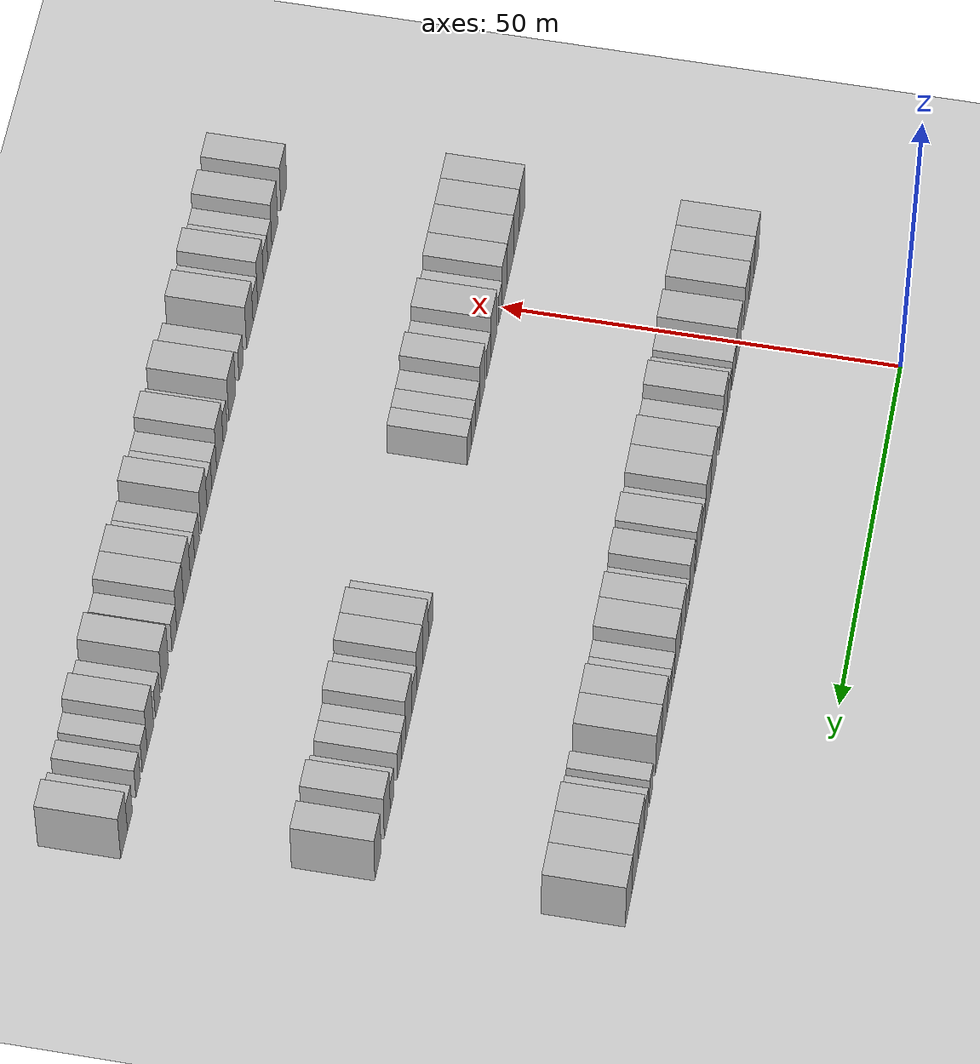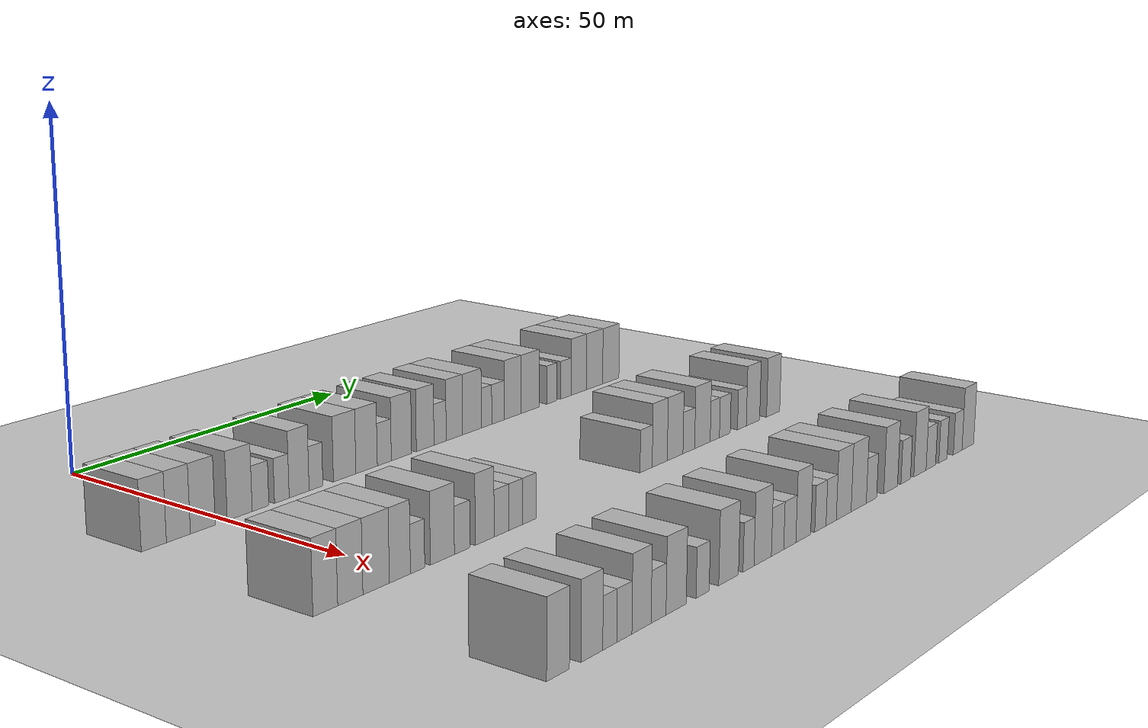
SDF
<sdf version="1.6">
 <world name="default">
  <include><name>ground_plane_1</name><uri>model://HANNAS_ground_plane</uri></include>
  <model name="building_99">
   <static>1</static>
   <pose>25.0000 -11.8800 0 0.000000 0.000000 0.000000</pose>
   <link name="link">
    <pose>0 0 4.50 0 0 0</pose>
    <collision name="collision"><geometry><box><size>10.0000 3.9005 9.0000</size></box></geometry></collision>
    <visual name="visual">
     <cast_shadows>0</cast_shadows>
     <geometry><box><size>10.0000 3.9005 9.0000</size></box></geometry>
     <material>
      <script>
       <uri>model://HANNAS_wall/materials/scripts</uri>
       <uri>model://HANNAS_wall/materials/textures</uri>
       <name>vrc/HANNAS_wall</name>
      </script>
     </material>
    </visual>
   </link>
  </model>
  <model name="building_100">
   <static>1</static>
   <pose>25.0000 -8.0152 0 0.000000 0.000000 0.000000</pose>
   <link name="link">
    <pose>0 0 4.50 0 0 0</pose>
    <collision name="collision"><geometry><box><size>10.0000 3.8291 9.0000</size></box></geometry></collision>
    <visual name="visual">
     <cast_shadows>0</cast_shadows>
     <geometry><box><size>10.0000 3.8291 9.0000</size></box></geometry>
     <material>
      <script>
       <uri>model://HANNAS_wall/materials/scripts</uri>
       <uri>model://HANNAS_wall/materials/textures</uri>
       <name>vrc/HANNAS_wall</name>
      </script>
     </material>
    </visual>
   </link>
  </model>
  <model name="building_101">
   <static>1</static>
   <pose>25.0000 -4.0634 0 0.000000 0.000000 0.000000</pose>
   <link name="link">
    <pose>0 0 4.50 0 0 0</pose>
    <collision name="collision"><geometry><box><size>10.0000 4.0743 9.0000</size></box></geometry></collision>
    <visual name="visual">
     <cast_shadows>0</cast_shadows>
     <geometry><box><size>10.0000 4.0743 9.0000</size></box></geometry>
     <material>
      <script>
       <uri>model://HANNAS_wall/materials/scripts</uri>
       <uri>model://HANNAS_wall/materials/textures</uri>
       <name>vrc/HANNAS_wall</name>
      </script>
     </material>
    </visual>
   </link>
  </model>
  <model name="building_102">
   <static>1</static>
   <pose>25.0000 2.1044 0 0.000000 0.000000 0.000000</pose>
   <link name="link">
    <pose>0 0 4.50 0 0 0</pose>
    <collision name="collision"><geometry><box><size>10.0000 4.2614 9.0000</size></box></geometry></collision>
    <visual name="visual">
     <cast_shadows>0</cast_shadows>
     <geometry><box><size>10.0000 4.2614 9.0000</size></box></geometry>
     <material>
      <script>
       <uri>model://HANNAS_wall/materials/scripts</uri>
       <uri>model://HANNAS_wall/materials/textures</uri>
       <name>vrc/HANNAS_wall</name>
      </script>
     </material>
    </visual>
   </link>
  </model>
  <model name="building_103">
   <static>1</static>
   <pose>25.0000 5.6907 0 0.000000 0.000000 0.000000</pose>
   <link name="link">
    <pose>0 0 3.00 0 0 0</pose>
    <collision name="collision"><geometry><box><size>10.0000 2.9110 6.0000</size></box></geometry></collision>
    <visual name="visual">
     <cast_shadows>0</cast_shadows>
     <geometry><box><size>10.0000 2.9110 6.0000</size></box></geometry>
     <material>
      <script>
       <uri>model://HANNAS_wall/materials/scripts</uri>
       <uri>model://HANNAS_wall/materials/textures</uri>
       <name>vrc/HANNAS_wall</name>
      </script>
     </material>
    </visual>
   </link>
  </model>
  <model name="building_104">
   <static>1</static>
   <pose>25.0000 9.4594 0 0.000000 0.000000 0.000000</pose>
   <link name="link">
    <pose>0 0 3.00 0 0 0</pose>
    <collision name="collision"><geometry><box><size>10.0000 2.6265 6.0000</size></box></geometry></collision>
    <visual name="visual">
     <cast_shadows>0</cast_shadows>
     <geometry><box><size>10.0000 2.6265 6.0000</size></box></geometry>
     <material>
      <script>
       <uri>model://HANNAS_wall/materials/scripts</uri>
       <uri>model://HANNAS_wall/materials/textures</uri>
       <name>vrc/HANNAS_wall</name>
      </script>
     </material>
    </visual>
   </link>
  </model>
  <model name="building_105">
   <static>1</static>
   <pose>25.0000 12.5987 0 0.000000 0.000000 0.000000</pose>
   <link name="link">
    <pose>0 0 4.50 0 0 0</pose>
    <collision name="collision"><geometry><box><size>10.0000 3.6520 9.0000</size></box></geometry></collision>
    <visual name="visual">
     <cast_shadows>0</cast_shadows>
     <geometry><box><size>10.0000 3.6520 9.0000</size></box></geometry>
     <material>
      <script>
       <uri>model://HANNAS_wall/materials/scripts</uri>
       <uri>model://HANNAS_wall/materials/textures</uri>
       <name>vrc/HANNAS_wall</name>
      </script>
     </material>
    </visual>
   </link>
  </model>
  <model name="building_106">
   <static>1</static>
   <pose>25.0000 15.7078 0 0.000000 0.000000 0.000000</pose>
   <link name="link">
    <pose>0 0 3.00 0 0 0</pose>
    <collision name="collision"><geometry><box><size>10.0000 2.5662 6.0000</size></box></geometry></collision>
    <visual name="visual">
     <cast_shadows>0</cast_shadows>
     <geometry><box><size>10.0000 2.5662 6.0000</size></box></geometry>
     <material>
      <script>
       <uri>model://HANNAS_wall/materials/scripts</uri>
       <uri>model://HANNAS_wall/materials/textures</uri>
       <name>vrc/HANNAS_wall</name>
      </script>
     </material>
    </visual>
   </link>
  </model>
  <model name="building_107">
   <static>1</static>
   <pose>25.0000 21.1686 0 0.000000 0.000000 0.000000</pose>
   <link name="link">
    <pose>0 0 4.50 0 0 0</pose>
    <collision name="collision"><geometry><box><size>10.0000 4.3552 9.0000</size></box></geometry></collision>
    <visual name="visual">
     <cast_shadows>0</cast_shadows>
     <geometry><box><size>10.0000 4.3552 9.0000</size></box></geometry>
     <material>
      <script>
       <uri>model://HANNAS_wall/materials/scripts</uri>
       <uri>model://HANNAS_wall/materials/textures</uri>
       <name>vrc/HANNAS_wall</name>
      </script>
     </material>
    </visual>
   </link>
  </model>
  <model name="building_108">
   <static>1</static>
   <pose>25.0000 25.4719 0 0.000000 0.000000 0.000000</pose>
   <link name="link">
    <pose>0 0 4.50 0 0 0</pose>
    <collision name="collision"><geometry><box><size>10.0000 4.2514 9.0000</size></box></geometry></collision>
    <visual name="visual">
     <cast_shadows>0</cast_shadows>
     <geometry><box><size>10.0000 4.2514 9.0000</size></box></geometry>
     <material>
      <script>
       <uri>model://HANNAS_wall/materials/scripts</uri>
       <uri>model://HANNAS_wall/materials/textures</uri>
       <name>vrc/HANNAS_wall</name>
      </script>
     </material>
    </visual>
   </link>
  </model>
  <model name="building_109">
   <static>1</static>
   <pose>25.0000 29.0185 0 0.000000 0.000000 0.000000</pose>
   <link name="link">
    <pose>0 0 3.00 0 0 0</pose>
    <collision name="collision"><geometry><box><size>10.0000 2.8420 6.0000</size></box></geometry></collision>
    <visual name="visual">
     <cast_shadows>0</cast_shadows>
     <geometry><box><size>10.0000 2.8420 6.0000</size></box></geometry>
     <material>
      <script>
       <uri>model://HANNAS_wall/materials/scripts</uri>
       <uri>model://HANNAS_wall/materials/textures</uri>
       <name>vrc/HANNAS_wall</name>
      </script>
     </material>
    </visual>
   </link>
  </model>
  <model name="building_110">
   <static>1</static>
   <pose>25.0000 32.5424 0 0.000000 0.000000 0.000000</pose>
   <link name="link">
    <pose>0 0 4.50 0 0 0</pose>
    <collision name="collision"><geometry><box><size>10.0000 4.2057 9.0000</size></box></geometry></collision>
    <visual name="visual">
     <cast_shadows>0</cast_shadows>
     <geometry><box><size>10.0000 4.2057 9.0000</size></box></geometry>
     <material>
      <script>
       <uri>model://HANNAS_wall/materials/scripts</uri>
       <uri>model://HANNAS_wall/materials/textures</uri>
       <name>vrc/HANNAS_wall</name>
      </script>
     </material>
    </visual>
   </link>
  </model>
  <model name="building_111">
   <static>1</static>
   <pose>25.0000 37.5344 0 0.000000 0.000000 0.000000</pose>
   <link name="link">
    <pose>0 0 4.50 0 0 0</pose>
    <collision name="collision"><geometry><box><size>10.0000 3.7782 9.0000</size></box></geometry></collision>
    <visual name="visual">
     <cast_shadows>0</cast_shadows>
     <geometry><box><size>10.0000 3.7782 9.0000</size></box></geometry>
     <material>
      <script>
       <uri>model://HANNAS_wall/materials/scripts</uri>
       <uri>model://HANNAS_wall/materials/textures</uri>
       <name>vrc/HANNAS_wall</name>
      </script>
     </material>
    </visual>
   </link>
  </model>
  <model name="building_112">
   <static>1</static>
   <pose>25.0000 40.7543 0 0.000000 0.000000 0.000000</pose>
   <link name="link">
    <pose>0 0 3.00 0 0 0</pose>
    <collision name="collision"><geometry><box><size>10.0000 2.6617 6.0000</size></box></geometry></collision>
    <visual name="visual">
     <cast_shadows>0</cast_shadows>
     <geometry><box><size>10.0000 2.6617 6.0000</size></box></geometry>
     <material>
      <script>
       <uri>model://HANNAS_wall/materials/scripts</uri>
       <uri>model://HANNAS_wall/materials/textures</uri>
       <name>vrc/HANNAS_wall</name>
      </script>
     </material>
    </visual>
   </link>
  </model>
  <model name="building_113">
   <static>1</static>
   <pose>25.0000 43.9038 0 0.000000 0.000000 0.000000</pose>
   <link name="link">
    <pose>0 0 4.50 0 0 0</pose>
    <collision name="collision"><geometry><box><size>10.0000 3.6372 9.0000</size></box></geometry></collision>
    <visual name="visual">
     <cast_shadows>0</cast_shadows>
     <geometry><box><size>10.0000 3.6372 9.0000</size></box></geometry>
     <material>
      <script>
       <uri>model://HANNAS_wall/materials/scripts</uri>
       <uri>model://HANNAS_wall/materials/textures</uri>
       <name>vrc/HANNAS_wall</name>
      </script>
     </material>
    </visual>
   </link>
  </model>
  <model name="building_114">
   <static>1</static>
   <pose>25.0000 47.8524 0 0.000000 0.000000 0.000000</pose>
   <link name="link">
    <pose>0 0 4.50 0 0 0</pose>
    <collision name="collision"><geometry><box><size>10.0000 4.2601 9.0000</size></box></geometry></collision>
    <visual name="visual">
     <cast_shadows>0</cast_shadows>
     <geometry><box><size>10.0000 4.2601 9.0000</size></box></geometry>
     <material>
      <script>
       <uri>model://HANNAS_wall/materials/scripts</uri>
       <uri>model://HANNAS_wall/materials/textures</uri>
       <name>vrc/HANNAS_wall</name>
      </script>
     </material>
    </visual>
   </link>
  </model>
  <model name="building_115">
   <static>1</static>
   <pose>25.0000 51.1911 0 0.000000 0.000000 0.000000</pose>
   <link name="link">
    <pose>0 0 3.00 0 0 0</pose>
    <collision name="collision"><geometry><box><size>10.0000 2.4172 6.0000</size></box></geometry></collision>
    <visual name="visual">
     <cast_shadows>0</cast_shadows>
     <geometry><box><size>10.0000 2.4172 6.0000</size></box></geometry>
     <material>
      <script>
       <uri>model://HANNAS_wall/materials/scripts</uri>
       <uri>model://HANNAS_wall/materials/textures</uri>
       <name>vrc/HANNAS_wall</name>
      </script>
     </material>
    </visual>
   </link>
  </model>
  <model name="building_116">
   <static>1</static>
   <pose>25.0000 53.8487 0 0.000000 0.000000 0.000000</pose>
   <link name="link">
    <pose>0 0 3.00 0 0 0</pose>
    <collision name="collision"><geometry><box><size>10.0000 2.8980 6.0000</size></box></geometry></collision>
    <visual name="visual">
     <cast_shadows>0</cast_shadows>
     <geometry><box><size>10.0000 2.8980 6.0000</size></box></geometry>
     <material>
      <script>
       <uri>model://HANNAS_wall/materials/scripts</uri>
       <uri>model://HANNAS_wall/materials/textures</uri>
       <name>vrc/HANNAS_wall</name>
      </script>
     </material>
    </visual>
   </link>
  </model>
  <model name="building_117">
   <static>1</static>
   <pose>25.0000 57.3358 0 0.000000 0.000000 0.000000</pose>
   <link name="link">
    <pose>0 0 4.50 0 0 0</pose>
    <collision name="collision"><geometry><box><size>10.0000 4.0763 9.0000</size></box></geometry></collision>
    <visual name="visual">
     <cast_shadows>0</cast_shadows>
     <geometry><box><size>10.0000 4.0763 9.0000</size></box></geometry>
     <material>
      <script>
       <uri>model://HANNAS_wall/materials/scripts</uri>
       <uri>model://HANNAS_wall/materials/textures</uri>
       <name>vrc/HANNAS_wall</name>
      </script>
     </material>
    </visual>
   </link>
  </model>
  <model name="building_118">
   <static>1</static>
   <pose>25.0000 61.5736 0 0.000000 0.000000 0.000000</pose>
   <link name="link">
    <pose>0 0 4.50 0 0 0</pose>
    <collision name="collision"><geometry><box><size>10.0000 4.3994 9.0000</size></box></geometry></collision>
    <visual name="visual">
     <cast_shadows>0</cast_shadows>
     <geometry><box><size>10.0000 4.3994 9.0000</size></box></geometry>
     <material>
      <script>
       <uri>model://HANNAS_wall/materials/scripts</uri>
       <uri>model://HANNAS_wall/materials/textures</uri>
       <name>vrc/HANNAS_wall</name>
      </script>
     </material>
    </visual>
   </link>
  </model>
  <model name="building_119">
   <static>1</static>
   <pose>25.0000 66.9908 0 0.000000 0.000000 0.000000</pose>
   <link name="link">
    <pose>0 0 3.00 0 0 0</pose>
    <collision name="collision"><geometry><box><size>10.0000 2.4350 6.0000</size></box></geometry></collision>
    <visual name="visual">
     <cast_shadows>0</cast_shadows>
     <geometry><box><size>10.0000 2.4350 6.0000</size></box></geometry>
     <material>
      <script>
       <uri>model://HANNAS_wall/materials/scripts</uri>
       <uri>model://HANNAS_wall/materials/textures</uri>
       <name>vrc/HANNAS_wall</name>
      </script>
     </material>
    </visual>
   </link>
  </model>
  <model name="building_120">
   <static>1</static>
   <pose>25.0000 70.5809 0 0.000000 0.000000 0.000000</pose>
   <link name="link">
    <pose>0 0 3.00 0 0 0</pose>
    <collision name="collision"><geometry><box><size>10.0000 2.7454 6.0000</size></box></geometry></collision>
    <visual name="visual">
     <cast_shadows>0</cast_shadows>
     <geometry><box><size>10.0000 2.7454 6.0000</size></box></geometry>
     <material>
      <script>
       <uri>model://HANNAS_wall/materials/scripts</uri>
       <uri>model://HANNAS_wall/materials/textures</uri>
       <name>vrc/HANNAS_wall</name>
      </script>
     </material>
    </visual>
   </link>
  </model>
  <model name="building_121">
   <static>1</static>
   <pose>25.0000 73.9779 0 0.000000 0.000000 0.000000</pose>
   <link name="link">
    <pose>0 0 4.50 0 0 0</pose>
    <collision name="collision"><geometry><box><size>10.0000 4.0485 9.0000</size></box></geometry></collision>
    <visual name="visual">
     <cast_shadows>0</cast_shadows>
     <geometry><box><size>10.0000 4.0485 9.0000</size></box></geometry>
     <material>
      <script>
       <uri>model://HANNAS_wall/materials/scripts</uri>
       <uri>model://HANNAS_wall/materials/textures</uri>
       <name>vrc/HANNAS_wall</name>
      </script>
     </material>
    </visual>
   </link>
  </model>
  <model name="building_122">
   <static>1</static>
   <pose>25.0000 78.1676 0 0.000000 0.000000 0.000000</pose>
   <link name="link">
    <pose>0 0 4.50 0 0 0</pose>
    <collision name="collision"><geometry><box><size>10.0000 4.3310 9.0000</size></box></geometry></collision>
    <visual name="visual">
     <cast_shadows>0</cast_shadows>
     <geometry><box><size>10.0000 4.3310 9.0000</size></box></geometry>
     <material>
      <script>
       <uri>model://HANNAS_wall/materials/scripts</uri>
       <uri>model://HANNAS_wall/materials/textures</uri>
       <name>vrc/HANNAS_wall</name>
      </script>
     </material>
    </visual>
   </link>
  </model>
  <model name="building_123">
   <static>1</static>
   <pose>25.0000 82.5753 0 0.000000 0.000000 0.000000</pose>
   <link name="link">
    <pose>0 0 4.50 0 0 0</pose>
    <collision name="collision"><geometry><box><size>10.0000 4.4843 9.0000</size></box></geometry></collision>
    <visual name="visual">
     <cast_shadows>0</cast_shadows>
     <geometry><box><size>10.0000 4.4843 9.0000</size></box></geometry>
     <material>
      <script>
       <uri>model://HANNAS_wall/materials/scripts</uri>
       <uri>model://HANNAS_wall/materials/textures</uri>
       <name>vrc/HANNAS_wall</name>
      </script>
     </material>
    </visual>
   </link>
  </model>
  <model name="building_338">
   <static>1</static>
   <pose>55.0000 -13.7168 0 0.000000 0.000000 0.000000</pose>
   <link name="link">
    <pose>0 0 4.50 0 0 0</pose>
    <collision name="collision"><geometry><box><size>10.0000 3.8787 9.0000</size></box></geometry></collision>
    <visual name="visual">
     <cast_shadows>0</cast_shadows>
     <geometry><box><size>10.0000 3.8787 9.0000</size></box></geometry>
     <material>
      <script>
       <uri>model://HANNAS_wall/materials/scripts</uri>
       <uri>model://HANNAS_wall/materials/textures</uri>
       <name>vrc/HANNAS_wall</name>
      </script>
     </material>
    </visual>
   </link>
  </model>
  <model name="building_339">
   <static>1</static>
   <pose>55.0000 -9.7505 0 0.000000 0.000000 0.000000</pose>
   <link name="link">
    <pose>0 0 4.50 0 0 0</pose>
    <collision name="collision"><geometry><box><size>10.0000 4.0540 9.0000</size></box></geometry></collision>
    <visual name="visual">
     <cast_shadows>0</cast_shadows>
     <geometry><box><size>10.0000 4.0540 9.0000</size></box></geometry>
     <material>
      <script>
       <uri>model://HANNAS_wall/materials/scripts</uri>
       <uri>model://HANNAS_wall/materials/textures</uri>
       <name>vrc/HANNAS_wall</name>
      </script>
     </material>
    </visual>
   </link>
  </model>
  <model name="building_340">
   <static>1</static>
   <pose>55.0000 -5.5214 0 0.000000 0.000000 0.000000</pose>
   <link name="link">
    <pose>0 0 4.50 0 0 0</pose>
    <collision name="collision"><geometry><box><size>10.0000 4.4042 9.0000</size></box></geometry></collision>
    <visual name="visual">
     <cast_shadows>0</cast_shadows>
     <geometry><box><size>10.0000 4.4042 9.0000</size></box></geometry>
     <material>
      <script>
       <uri>model://HANNAS_wall/materials/scripts</uri>
       <uri>model://HANNAS_wall/materials/textures</uri>
       <name>vrc/HANNAS_wall</name>
      </script>
     </material>
    </visual>
   </link>
  </model>
  <model name="building_341">
   <static>1</static>
   <pose>55.0000 -1.5178 0 0.000000 0.000000 0.000000</pose>
   <link name="link">
    <pose>0 0 4.50 0 0 0</pose>
    <collision name="collision"><geometry><box><size>10.0000 3.6029 9.0000</size></box></geometry></collision>
    <visual name="visual">
     <cast_shadows>0</cast_shadows>
     <geometry><box><size>10.0000 3.6029 9.0000</size></box></geometry>
     <material>
      <script>
       <uri>model://HANNAS_wall/materials/scripts</uri>
       <uri>model://HANNAS_wall/materials/textures</uri>
       <name>vrc/HANNAS_wall</name>
      </script>
     </material>
    </visual>
   </link>
  </model>
  <model name="building_342">
   <static>1</static>
   <pose>55.0000 1.5349 0 0.000000 0.000000 0.000000</pose>
   <link name="link">
    <pose>0 0 3.00 0 0 0</pose>
    <collision name="collision"><geometry><box><size>10.0000 2.5025 6.0000</size></box></geometry></collision>
    <visual name="visual">
     <cast_shadows>0</cast_shadows>
     <geometry><box><size>10.0000 2.5025 6.0000</size></box></geometry>
     <material>
      <script>
       <uri>model://HANNAS_wall/materials/scripts</uri>
       <uri>model://HANNAS_wall/materials/textures</uri>
       <name>vrc/HANNAS_wall</name>
      </script>
     </material>
    </visual>
   </link>
  </model>
  <model name="building_343">
   <static>1</static>
   <pose>55.0000 5.9550 0 0.000000 0.000000 0.000000</pose>
   <link name="link">
    <pose>0 0 4.50 0 0 0</pose>
    <collision name="collision"><geometry><box><size>10.0000 4.3378 9.0000</size></box></geometry></collision>
    <visual name="visual">
     <cast_shadows>0</cast_shadows>
     <geometry><box><size>10.0000 4.3378 9.0000</size></box></geometry>
     <material>
      <script>
       <uri>model://HANNAS_wall/materials/scripts</uri>
       <uri>model://HANNAS_wall/materials/textures</uri>
       <name>vrc/HANNAS_wall</name>
      </script>
     </material>
    </visual>
   </link>
  </model>
  <model name="building_344">
   <static>1</static>
   <pose>55.0000 9.5655 0 0.000000 0.000000 0.000000</pose>
   <link name="link">
    <pose>0 0 3.00 0 0 0</pose>
    <collision name="collision"><geometry><box><size>10.0000 2.8831 6.0000</size></box></geometry></collision>
    <visual name="visual">
     <cast_shadows>0</cast_shadows>
     <geometry><box><size>10.0000 2.8831 6.0000</size></box></geometry>
     <material>
      <script>
       <uri>model://HANNAS_wall/materials/scripts</uri>
       <uri>model://HANNAS_wall/materials/textures</uri>
       <name>vrc/HANNAS_wall</name>
      </script>
     </material>
    </visual>
   </link>
  </model>
  <model name="building_345">
   <static>1</static>
   <pose>55.0000 13.8133 0 0.000000 0.000000 0.000000</pose>
   <link name="link">
    <pose>0 0 4.50 0 0 0</pose>
    <collision name="collision"><geometry><box><size>10.0000 3.6126 9.0000</size></box></geometry></collision>
    <visual name="visual">
     <cast_shadows>0</cast_shadows>
     <geometry><box><size>10.0000 3.6126 9.0000</size></box></geometry>
     <material>
      <script>
       <uri>model://HANNAS_wall/materials/scripts</uri>
       <uri>model://HANNAS_wall/materials/textures</uri>
       <name>vrc/HANNAS_wall</name>
      </script>
     </material>
    </visual>
   </link>
  </model>
  <model name="building_346">
   <static>1</static>
   <pose>55.0000 17.0398 0 0.000000 0.000000 0.000000</pose>
   <link name="link">
    <pose>0 0 3.00 0 0 0</pose>
    <collision name="collision"><geometry><box><size>10.0000 2.8403 6.0000</size></box></geometry></collision>
    <visual name="visual">
     <cast_shadows>0</cast_shadows>
     <geometry><box><size>10.0000 2.8403 6.0000</size></box></geometry>
     <material>
      <script>
       <uri>model://HANNAS_wall/materials/scripts</uri>
       <uri>model://HANNAS_wall/materials/textures</uri>
       <name>vrc/HANNAS_wall</name>
      </script>
     </material>
    </visual>
   </link>
  </model>
  <model name="building_347">
   <static>1</static>
   <pose>55.0000 19.8677 0 0.000000 0.000000 0.000000</pose>
   <link name="link">
    <pose>0 0 3.00 0 0 0</pose>
    <collision name="collision"><geometry><box><size>10.0000 2.8155 6.0000</size></box></geometry></collision>
    <visual name="visual">
     <cast_shadows>0</cast_shadows>
     <geometry><box><size>10.0000 2.8155 6.0000</size></box></geometry>
     <material>
      <script>
       <uri>model://HANNAS_wall/materials/scripts</uri>
       <uri>model://HANNAS_wall/materials/textures</uri>
       <name>vrc/HANNAS_wall</name>
      </script>
     </material>
    </visual>
   </link>
  </model>
  <model name="building_348">
   <static>1</static>
   <pose>55.0000 22.6367 0 0.000000 0.000000 0.000000</pose>
   <link name="link">
    <pose>0 0 3.00 0 0 0</pose>
    <collision name="collision"><geometry><box><size>10.0000 2.7226 6.0000</size></box></geometry></collision>
    <visual name="visual">
     <cast_shadows>0</cast_shadows>
     <geometry><box><size>10.0000 2.7226 6.0000</size></box></geometry>
     <material>
      <script>
       <uri>model://HANNAS_wall/materials/scripts</uri>
       <uri>model://HANNAS_wall/materials/textures</uri>
       <name>vrc/HANNAS_wall</name>
      </script>
     </material>
    </visual>
   </link>
  </model>
  <model name="building_349">
   <static>1</static>
   <pose>55.0000 48.3704 0 0.000000 0.000000 0.000000</pose>
   <link name="link">
    <pose>0 0 3.00 0 0 0</pose>
    <collision name="collision"><geometry><box><size>10.0000 2.9149 6.0000</size></box></geometry></collision>
    <visual name="visual">
     <cast_shadows>0</cast_shadows>
     <geometry><box><size>10.0000 2.9149 6.0000</size></box></geometry>
     <material>
      <script>
       <uri>model://HANNAS_wall/materials/scripts</uri>
       <uri>model://HANNAS_wall/materials/textures</uri>
       <name>vrc/HANNAS_wall</name>
      </script>
     </material>
    </visual>
   </link>
  </model>
  <model name="building_350">
   <static>1</static>
   <pose>55.0000 51.6687 0 0.000000 0.000000 0.000000</pose>
   <link name="link">
    <pose>0 0 4.50 0 0 0</pose>
    <collision name="collision"><geometry><box><size>10.0000 3.6815 9.0000</size></box></geometry></collision>
    <visual name="visual">
     <cast_shadows>0</cast_shadows>
     <geometry><box><size>10.0000 3.6815 9.0000</size></box></geometry>
     <material>
      <script>
       <uri>model://HANNAS_wall/materials/scripts</uri>
       <uri>model://HANNAS_wall/materials/textures</uri>
       <name>vrc/HANNAS_wall</name>
      </script>
     </material>
    </visual>
   </link>
  </model>
  <model name="building_351">
   <static>1</static>
   <pose>55.0000 55.4789 0 0.000000 0.000000 0.000000</pose>
   <link name="link">
    <pose>0 0 4.50 0 0 0</pose>
    <collision name="collision"><geometry><box><size>10.0000 3.9389 9.0000</size></box></geometry></collision>
    <visual name="visual">
     <cast_shadows>0</cast_shadows>
     <geometry><box><size>10.0000 3.9389 9.0000</size></box></geometry>
     <material>
      <script>
       <uri>model://HANNAS_wall/materials/scripts</uri>
       <uri>model://HANNAS_wall/materials/textures</uri>
       <name>vrc/HANNAS_wall</name>
      </script>
     </material>
    </visual>
   </link>
  </model>
  <model name="building_352">
   <static>1</static>
   <pose>55.0000 58.9424 0 0.000000 0.000000 0.000000</pose>
   <link name="link">
    <pose>0 0 3.00 0 0 0</pose>
    <collision name="collision"><geometry><box><size>10.0000 2.9882 6.0000</size></box></geometry></collision>
    <visual name="visual">
     <cast_shadows>0</cast_shadows>
     <geometry><box><size>10.0000 2.9882 6.0000</size></box></geometry>
     <material>
      <script>
       <uri>model://HANNAS_wall/materials/scripts</uri>
       <uri>model://HANNAS_wall/materials/textures</uri>
       <name>vrc/HANNAS_wall</name>
      </script>
     </material>
    </visual>
   </link>
  </model>
  <model name="building_353">
   <static>1</static>
   <pose>55.0000 62.4725 0 0.000000 0.000000 0.000000</pose>
   <link name="link">
    <pose>0 0 4.50 0 0 0</pose>
    <collision name="collision"><geometry><box><size>10.0000 4.0721 9.0000</size></box></geometry></collision>
    <visual name="visual">
     <cast_shadows>0</cast_shadows>
     <geometry><box><size>10.0000 4.0721 9.0000</size></box></geometry>
     <material>
      <script>
       <uri>model://HANNAS_wall/materials/scripts</uri>
       <uri>model://HANNAS_wall/materials/textures</uri>
       <name>vrc/HANNAS_wall</name>
      </script>
     </material>
    </visual>
   </link>
  </model>
  <model name="building_354">
   <static>1</static>
   <pose>55.0000 65.7419 0 0.000000 0.000000 0.000000</pose>
   <link name="link">
    <pose>0 0 3.00 0 0 0</pose>
    <collision name="collision"><geometry><box><size>10.0000 2.4668 6.0000</size></box></geometry></collision>
    <visual name="visual">
     <cast_shadows>0</cast_shadows>
     <geometry><box><size>10.0000 2.4668 6.0000</size></box></geometry>
     <material>
      <script>
       <uri>model://HANNAS_wall/materials/scripts</uri>
       <uri>model://HANNAS_wall/materials/textures</uri>
       <name>vrc/HANNAS_wall</name>
      </script>
     </material>
    </visual>
   </link>
  </model>
  <model name="building_355">
   <static>1</static>
   <pose>55.0000 68.4376 0 0.000000 0.000000 0.000000</pose>
   <link name="link">
    <pose>0 0 3.00 0 0 0</pose>
    <collision name="collision"><geometry><box><size>10.0000 2.9246 6.0000</size></box></geometry></collision>
    <visual name="visual">
     <cast_shadows>0</cast_shadows>
     <geometry><box><size>10.0000 2.9246 6.0000</size></box></geometry>
     <material>
      <script>
       <uri>model://HANNAS_wall/materials/scripts</uri>
       <uri>model://HANNAS_wall/materials/textures</uri>
       <name>vrc/HANNAS_wall</name>
      </script>
     </material>
    </visual>
   </link>
  </model>
  <model name="building_356">
   <static>1</static>
   <pose>55.0000 73.1202 0 0.000000 0.000000 0.000000</pose>
   <link name="link">
    <pose>0 0 3.00 0 0 0</pose>
    <collision name="collision"><geometry><box><size>10.0000 2.4405 6.0000</size></box></geometry></collision>
    <visual name="visual">
     <cast_shadows>0</cast_shadows>
     <geometry><box><size>10.0000 2.4405 6.0000</size></box></geometry>
     <material>
      <script>
       <uri>model://HANNAS_wall/materials/scripts</uri>
       <uri>model://HANNAS_wall/materials/textures</uri>
       <name>vrc/HANNAS_wall</name>
      </script>
     </material>
    </visual>
   </link>
  </model>
  <model name="building_357">
   <static>1</static>
   <pose>55.0000 76.2314 0 0.000000 0.000000 0.000000</pose>
   <link name="link">
    <pose>0 0 4.50 0 0 0</pose>
    <collision name="collision"><geometry><box><size>10.0000 3.7820 9.0000</size></box></geometry></collision>
    <visual name="visual">
     <cast_shadows>0</cast_shadows>
     <geometry><box><size>10.0000 3.7820 9.0000</size></box></geometry>
     <material>
      <script>
       <uri>model://HANNAS_wall/materials/scripts</uri>
       <uri>model://HANNAS_wall/materials/textures</uri>
       <name>vrc/HANNAS_wall</name>
      </script>
     </material>
    </visual>
   </link>
  </model>
  <model name="building_358">
   <static>1</static>
   <pose>55.0000 82.0408 0 0.000000 0.000000 0.000000</pose>
   <link name="link">
    <pose>0 0 4.50 0 0 0</pose>
    <collision name="collision"><geometry><box><size>10.0000 3.8368 9.0000</size></box></geometry></collision>
    <visual name="visual">
     <cast_shadows>0</cast_shadows>
     <geometry><box><size>10.0000 3.8368 9.0000</size></box></geometry>
     <material>
      <script>
       <uri>model://HANNAS_wall/materials/scripts</uri>
       <uri>model://HANNAS_wall/materials/textures</uri>
       <name>vrc/HANNAS_wall</name>
      </script>
     </material>
    </visual>
   </link>
  </model>
  <model name="building_567">
   <static>1</static>
   <pose>85.0000 -11.4988 0 0.000000 0.000000 0.000000</pose>
   <link name="link">
    <pose>0 0 4.50 0 0 0</pose>
    <collision name="collision"><geometry><box><size>10.0000 3.8180 9.0000</size></box></geometry></collision>
    <visual name="visual">
     <cast_shadows>0</cast_shadows>
     <geometry><box><size>10.0000 3.8180 9.0000</size></box></geometry>
     <material>
      <script>
       <uri>model://HANNAS_wall/materials/scripts</uri>
       <uri>model://HANNAS_wall/materials/textures</uri>
       <name>vrc/HANNAS_wall</name>
      </script>
     </material>
    </visual>
   </link>
  </model>
  <model name="building_568">
   <static>1</static>
   <pose>85.0000 -5.6913 0 0.000000 0.000000 0.000000</pose>
   <link name="link">
    <pose>0 0 4.50 0 0 0</pose>
    <collision name="collision"><geometry><box><size>10.0000 3.7970 9.0000</size></box></geometry></collision>
    <visual name="visual">
     <cast_shadows>0</cast_shadows>
     <geometry><box><size>10.0000 3.7970 9.0000</size></box></geometry>
     <material>
      <script>
       <uri>model://HANNAS_wall/materials/scripts</uri>
       <uri>model://HANNAS_wall/materials/textures</uri>
       <name>vrc/HANNAS_wall</name>
      </script>
     </material>
    </visual>
   </link>
  </model>
  <model name="building_569">
   <static>1</static>
   <pose>85.0000 -2.5363 0 0.000000 0.000000 0.000000</pose>
   <link name="link">
    <pose>0 0 3.00 0 0 0</pose>
    <collision name="collision"><geometry><box><size>10.0000 2.5130 6.0000</size></box></geometry></collision>
    <visual name="visual">
     <cast_shadows>0</cast_shadows>
     <geometry><box><size>10.0000 2.5130 6.0000</size></box></geometry>
     <material>
      <script>
       <uri>model://HANNAS_wall/materials/scripts</uri>
       <uri>model://HANNAS_wall/materials/textures</uri>
       <name>vrc/HANNAS_wall</name>
      </script>
     </material>
    </visual>
   </link>
  </model>
  <model name="building_570">
   <static>1</static>
   <pose>85.0000 0.1137 0 0.000000 0.000000 0.000000</pose>
   <link name="link">
    <pose>0 0 3.00 0 0 0</pose>
    <collision name="collision"><geometry><box><size>10.0000 2.7870 6.0000</size></box></geometry></collision>
    <visual name="visual">
     <cast_shadows>0</cast_shadows>
     <geometry><box><size>10.0000 2.7870 6.0000</size></box></geometry>
     <material>
      <script>
       <uri>model://HANNAS_wall/materials/scripts</uri>
       <uri>model://HANNAS_wall/materials/textures</uri>
       <name>vrc/HANNAS_wall</name>
      </script>
     </material>
    </visual>
   </link>
  </model>
  <model name="building_571">
   <static>1</static>
   <pose>85.0000 3.3120 0 0.000000 0.000000 0.000000</pose>
   <link name="link">
    <pose>0 0 4.50 0 0 0</pose>
    <collision name="collision"><geometry><box><size>10.0000 3.6097 9.0000</size></box></geometry></collision>
    <visual name="visual">
     <cast_shadows>0</cast_shadows>
     <geometry><box><size>10.0000 3.6097 9.0000</size></box></geometry>
     <material>
      <script>
       <uri>model://HANNAS_wall/materials/scripts</uri>
       <uri>model://HANNAS_wall/materials/textures</uri>
       <name>vrc/HANNAS_wall</name>
      </script>
     </material>
    </visual>
   </link>
  </model>
  <model name="building_572">
   <static>1</static>
   <pose>85.0000 6.5601 0 0.000000 0.000000 0.000000</pose>
   <link name="link">
    <pose>0 0 3.00 0 0 0</pose>
    <collision name="collision"><geometry><box><size>10.0000 2.8865 6.0000</size></box></geometry></collision>
    <visual name="visual">
     <cast_shadows>0</cast_shadows>
     <geometry><box><size>10.0000 2.8865 6.0000</size></box></geometry>
     <material>
      <script>
       <uri>model://HANNAS_wall/materials/scripts</uri>
       <uri>model://HANNAS_wall/materials/textures</uri>
       <name>vrc/HANNAS_wall</name>
      </script>
     </material>
    </visual>
   </link>
  </model>
  <model name="building_573">
   <static>1</static>
   <pose>85.0000 10.0147 0 0.000000 0.000000 0.000000</pose>
   <link name="link">
    <pose>0 0 4.50 0 0 0</pose>
    <collision name="collision"><geometry><box><size>10.0000 4.0227 9.0000</size></box></geometry></collision>
    <visual name="visual">
     <cast_shadows>0</cast_shadows>
     <geometry><box><size>10.0000 4.0227 9.0000</size></box></geometry>
     <material>
      <script>
       <uri>model://HANNAS_wall/materials/scripts</uri>
       <uri>model://HANNAS_wall/materials/textures</uri>
       <name>vrc/HANNAS_wall</name>
      </script>
     </material>
    </visual>
   </link>
  </model>
  <model name="building_574">
   <static>1</static>
   <pose>85.0000 15.3799 0 0.000000 0.000000 0.000000</pose>
   <link name="link">
    <pose>0 0 3.00 0 0 0</pose>
    <collision name="collision"><geometry><box><size>10.0000 2.7077 6.0000</size></box></geometry></collision>
    <visual name="visual">
     <cast_shadows>0</cast_shadows>
     <geometry><box><size>10.0000 2.7077 6.0000</size></box></geometry>
     <material>
      <script>
       <uri>model://HANNAS_wall/materials/scripts</uri>
       <uri>model://HANNAS_wall/materials/textures</uri>
       <name>vrc/HANNAS_wall</name>
      </script>
     </material>
    </visual>
   </link>
  </model>
  <model name="building_575">
   <static>1</static>
   <pose>85.0000 20.8634 0 0.000000 0.000000 0.000000</pose>
   <link name="link">
    <pose>0 0 4.50 0 0 0</pose>
    <collision name="collision"><geometry><box><size>10.0000 4.2592 9.0000</size></box></geometry></collision>
    <visual name="visual">
     <cast_shadows>0</cast_shadows>
     <geometry><box><size>10.0000 4.2592 9.0000</size></box></geometry>
     <material>
      <script>
       <uri>model://HANNAS_wall/materials/scripts</uri>
       <uri>model://HANNAS_wall/materials/textures</uri>
       <name>vrc/HANNAS_wall</name>
      </script>
     </material>
    </visual>
   </link>
  </model>
  <model name="building_576">
   <static>1</static>
   <pose>85.0000 25.2092 0 0.000000 0.000000 0.000000</pose>
   <link name="link">
    <pose>0 0 3.00 0 0 0</pose>
    <collision name="collision"><geometry><box><size>10.0000 2.4323 6.0000</size></box></geometry></collision>
    <visual name="visual">
     <cast_shadows>0</cast_shadows>
     <geometry><box><size>10.0000 2.4323 6.0000</size></box></geometry>
     <material>
      <script>
       <uri>model://HANNAS_wall/materials/scripts</uri>
       <uri>model://HANNAS_wall/materials/textures</uri>
       <name>vrc/HANNAS_wall</name>
      </script>
     </material>
    </visual>
   </link>
  </model>
  <model name="building_577">
   <static>1</static>
   <pose>85.0000 28.4054 0 0.000000 0.000000 0.000000</pose>
   <link name="link">
    <pose>0 0 4.50 0 0 0</pose>
    <collision name="collision"><geometry><box><size>10.0000 3.9601 9.0000</size></box></geometry></collision>
    <visual name="visual">
     <cast_shadows>0</cast_shadows>
     <geometry><box><size>10.0000 3.9601 9.0000</size></box></geometry>
     <material>
      <script>
       <uri>model://HANNAS_wall/materials/scripts</uri>
       <uri>model://HANNAS_wall/materials/textures</uri>
       <name>vrc/HANNAS_wall</name>
      </script>
     </material>
    </visual>
   </link>
  </model>
  <model name="building_578">
   <static>1</static>
   <pose>85.0000 31.8237 0 0.000000 0.000000 0.000000</pose>
   <link name="link">
    <pose>0 0 3.00 0 0 0</pose>
    <collision name="collision"><geometry><box><size>10.0000 2.8764 6.0000</size></box></geometry></collision>
    <visual name="visual">
     <cast_shadows>0</cast_shadows>
     <geometry><box><size>10.0000 2.8764 6.0000</size></box></geometry>
     <material>
      <script>
       <uri>model://HANNAS_wall/materials/scripts</uri>
       <uri>model://HANNAS_wall/materials/textures</uri>
       <name>vrc/HANNAS_wall</name>
      </script>
     </material>
    </visual>
   </link>
  </model>
  <model name="building_579">
   <static>1</static>
   <pose>85.0000 34.7096 0 0.000000 0.000000 0.000000</pose>
   <link name="link">
    <pose>0 0 3.00 0 0 0</pose>
    <collision name="collision"><geometry><box><size>10.0000 2.8956 6.0000</size></box></geometry></collision>
    <visual name="visual">
     <cast_shadows>0</cast_shadows>
     <geometry><box><size>10.0000 2.8956 6.0000</size></box></geometry>
     <material>
      <script>
       <uri>model://HANNAS_wall/materials/scripts</uri>
       <uri>model://HANNAS_wall/materials/textures</uri>
       <name>vrc/HANNAS_wall</name>
      </script>
     </material>
    </visual>
   </link>
  </model>
  <model name="building_580">
   <static>1</static>
   <pose>85.0000 37.9664 0 0.000000 0.000000 0.000000</pose>
   <link name="link">
    <pose>0 0 4.50 0 0 0</pose>
    <collision name="collision"><geometry><box><size>10.0000 3.6180 9.0000</size></box></geometry></collision>
    <visual name="visual">
     <cast_shadows>0</cast_shadows>
     <geometry><box><size>10.0000 3.6180 9.0000</size></box></geometry>
     <material>
      <script>
       <uri>model://HANNAS_wall/materials/scripts</uri>
       <uri>model://HANNAS_wall/materials/textures</uri>
       <name>vrc/HANNAS_wall</name>
      </script>
     </material>
    </visual>
   </link>
  </model>
  <model name="building_581">
   <static>1</static>
   <pose>85.0000 42.1871 0 0.000000 0.000000 0.000000</pose>
   <link name="link">
    <pose>0 0 3.00 0 0 0</pose>
    <collision name="collision"><geometry><box><size>10.0000 2.8234 6.0000</size></box></geometry></collision>
    <visual name="visual">
     <cast_shadows>0</cast_shadows>
     <geometry><box><size>10.0000 2.8234 6.0000</size></box></geometry>
     <material>
      <script>
       <uri>model://HANNAS_wall/materials/scripts</uri>
       <uri>model://HANNAS_wall/materials/textures</uri>
       <name>vrc/HANNAS_wall</name>
      </script>
     </material>
    </visual>
   </link>
  </model>
  <model name="building_582">
   <static>1</static>
   <pose>85.0000 44.9126 0 0.000000 0.000000 0.000000</pose>
   <link name="link">
    <pose>0 0 3.00 0 0 0</pose>
    <collision name="collision"><geometry><box><size>10.0000 2.6275 6.0000</size></box></geometry></collision>
    <visual name="visual">
     <cast_shadows>0</cast_shadows>
     <geometry><box><size>10.0000 2.6275 6.0000</size></box></geometry>
     <material>
      <script>
       <uri>model://HANNAS_wall/materials/scripts</uri>
       <uri>model://HANNAS_wall/materials/textures</uri>
       <name>vrc/HANNAS_wall</name>
      </script>
     </material>
    </visual>
   </link>
  </model>
  <model name="building_583">
   <static>1</static>
   <pose>85.0000 48.1649 0 0.000000 0.000000 0.000000</pose>
   <link name="link">
    <pose>0 0 4.50 0 0 0</pose>
    <collision name="collision"><geometry><box><size>10.0000 3.8770 9.0000</size></box></geometry></collision>
    <visual name="visual">
     <cast_shadows>0</cast_shadows>
     <geometry><box><size>10.0000 3.8770 9.0000</size></box></geometry>
     <material>
      <script>
       <uri>model://HANNAS_wall/materials/scripts</uri>
       <uri>model://HANNAS_wall/materials/textures</uri>
       <name>vrc/HANNAS_wall</name>
      </script>
     </material>
    </visual>
   </link>
  </model>
  <model name="building_584">
   <static>1</static>
   <pose>85.0000 52.1365 0 0.000000 0.000000 0.000000</pose>
   <link name="link">
    <pose>0 0 4.50 0 0 0</pose>
    <collision name="collision"><geometry><box><size>10.0000 4.0663 9.0000</size></box></geometry></collision>
    <visual name="visual">
     <cast_shadows>0</cast_shadows>
     <geometry><box><size>10.0000 4.0663 9.0000</size></box></geometry>
     <material>
      <script>
       <uri>model://HANNAS_wall/materials/scripts</uri>
       <uri>model://HANNAS_wall/materials/textures</uri>
       <name>vrc/HANNAS_wall</name>
      </script>
     </material>
    </visual>
   </link>
  </model>
  <model name="building_585">
   <static>1</static>
   <pose>85.0000 55.5890 0 0.000000 0.000000 0.000000</pose>
   <link name="link">
    <pose>0 0 3.00 0 0 0</pose>
    <collision name="collision"><geometry><box><size>10.0000 2.8387 6.0000</size></box></geometry></collision>
    <visual name="visual">
     <cast_shadows>0</cast_shadows>
     <geometry><box><size>10.0000 2.8387 6.0000</size></box></geometry>
     <material>
      <script>
       <uri>model://HANNAS_wall/materials/scripts</uri>
       <uri>model://HANNAS_wall/materials/textures</uri>
       <name>vrc/HANNAS_wall</name>
      </script>
     </material>
    </visual>
   </link>
  </model>
  <model name="building_586">
   <static>1</static>
   <pose>85.0000 60.9475 0 0.000000 0.000000 0.000000</pose>
   <link name="link">
    <pose>0 0 4.50 0 0 0</pose>
    <collision name="collision"><geometry><box><size>10.0000 3.8781 9.0000</size></box></geometry></collision>
    <visual name="visual">
     <cast_shadows>0</cast_shadows>
     <geometry><box><size>10.0000 3.8781 9.0000</size></box></geometry>
     <material>
      <script>
       <uri>model://HANNAS_wall/materials/scripts</uri>
       <uri>model://HANNAS_wall/materials/textures</uri>
       <name>vrc/HANNAS_wall</name>
      </script>
     </material>
    </visual>
   </link>
  </model>
  <model name="building_587">
   <static>1</static>
   <pose>85.0000 65.2691 0 0.000000 0.000000 0.000000</pose>
   <link name="link">
    <pose>0 0 3.00 0 0 0</pose>
    <collision name="collision"><geometry><box><size>10.0000 2.7651 6.0000</size></box></geometry></collision>
    <visual name="visual">
     <cast_shadows>0</cast_shadows>
     <geometry><box><size>10.0000 2.7651 6.0000</size></box></geometry>
     <material>
      <script>
       <uri>model://HANNAS_wall/materials/scripts</uri>
       <uri>model://HANNAS_wall/materials/textures</uri>
       <name>vrc/HANNAS_wall</name>
      </script>
     </material>
    </visual>
   </link>
  </model>
  <model name="building_588">
   <static>1</static>
   <pose>85.0000 69.4931 0 0.000000 0.000000 0.000000</pose>
   <link name="link">
    <pose>0 0 4.50 0 0 0</pose>
    <collision name="collision"><geometry><box><size>10.0000 3.6829 9.0000</size></box></geometry></collision>
    <visual name="visual">
     <cast_shadows>0</cast_shadows>
     <geometry><box><size>10.0000 3.6829 9.0000</size></box></geometry>
     <material>
      <script>
       <uri>model://HANNAS_wall/materials/scripts</uri>
       <uri>model://HANNAS_wall/materials/textures</uri>
       <name>vrc/HANNAS_wall</name>
      </script>
     </material>
    </visual>
   </link>
  </model>
  <model name="building_589">
   <static>1</static>
   <pose>85.0000 72.7877 0 0.000000 0.000000 0.000000</pose>
   <link name="link">
    <pose>0 0 3.00 0 0 0</pose>
    <collision name="collision"><geometry><box><size>10.0000 2.9061 6.0000</size></box></geometry></collision>
    <visual name="visual">
     <cast_shadows>0</cast_shadows>
     <geometry><box><size>10.0000 2.9061 6.0000</size></box></geometry>
     <material>
      <script>
       <uri>model://HANNAS_wall/materials/scripts</uri>
       <uri>model://HANNAS_wall/materials/textures</uri>
       <name>vrc/HANNAS_wall</name>
      </script>
     </material>
    </visual>
   </link>
  </model>
  <model name="building_590">
   <static>1</static>
   <pose>85.0000 76.5427 0 0.000000 0.000000 0.000000</pose>
   <link name="link">
    <pose>0 0 3.00 0 0 0</pose>
    <collision name="collision"><geometry><box><size>10.0000 2.6040 6.0000</size></box></geometry></collision>
    <visual name="visual">
     <cast_shadows>0</cast_shadows>
     <geometry><box><size>10.0000 2.6040 6.0000</size></box></geometry>
     <material>
      <script>
       <uri>model://HANNAS_wall/materials/scripts</uri>
       <uri>model://HANNAS_wall/materials/textures</uri>
       <name>vrc/HANNAS_wall</name>
      </script>
     </material>
    </visual>
   </link>
  </model>
  <model name="building_591">
   <static>1</static>
   <pose>85.0000 81.2288 0 0.000000 0.000000 0.000000</pose>
   <link name="link">
    <pose>0 0 3.00 0 0 0</pose>
    <collision name="collision"><geometry><box><size>10.0000 2.7682 6.0000</size></box></geometry></collision>
    <visual name="visual">
     <cast_shadows>0</cast_shadows>
     <geometry><box><size>10.0000 2.7682 6.0000</size></box></geometry>
     <material>
      <script>
       <uri>model://HANNAS_wall/materials/scripts</uri>
       <uri>model://HANNAS_wall/materials/textures</uri>
       <name>vrc/HANNAS_wall</name>
      </script>
     </material>
    </visual>
   </link>
  </model>
  <model name="building_592">
   <static>1</static>
   <pose>85.0000 84.5222 0 0.000000 0.000000 0.000000</pose>
   <link name="link">
    <pose>0 0 4.50 0 0 0</pose>
    <collision name="collision"><geometry><box><size>10.0000 3.8186 9.0000</size></box></geometry></collision>
    <visual name="visual">
     <cast_shadows>0</cast_shadows>
     <geometry><box><size>10.0000 3.8186 9.0000</size></box></geometry>
     <material>
      <script>
       <uri>model://HANNAS_wall/materials/scripts</uri>
       <uri>model://HANNAS_wall/materials/textures</uri>
       <name>vrc/HANNAS_wall</name>
      </script>
     </material>
    </visual>
   </link>
  </model>
 </world>
</sdf>
